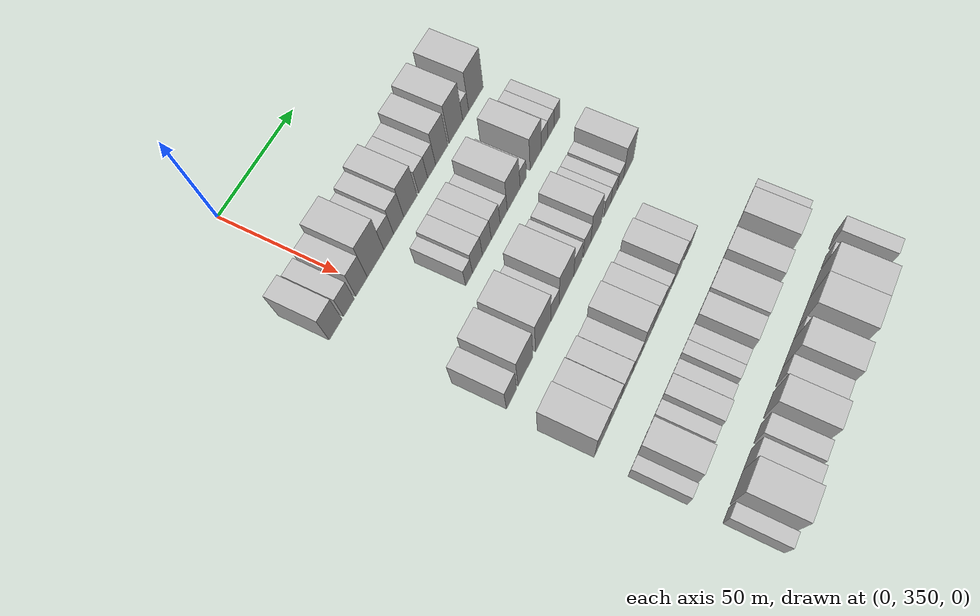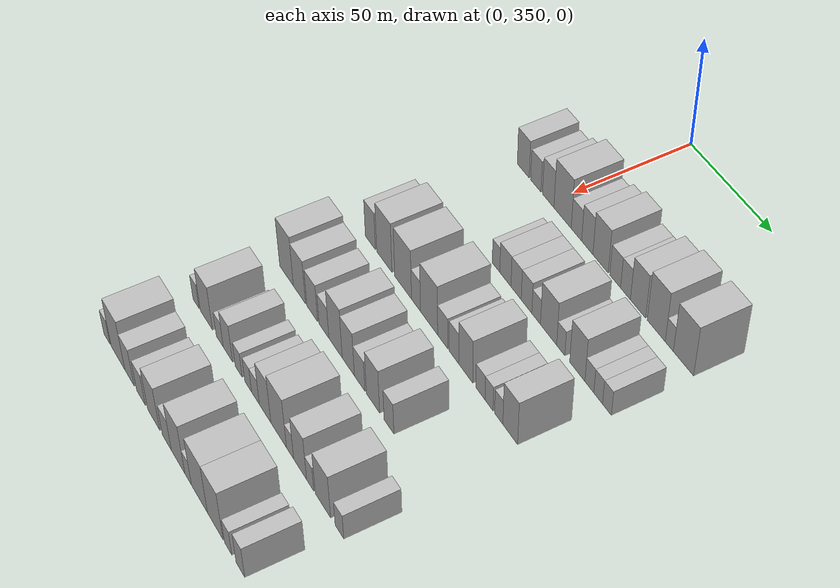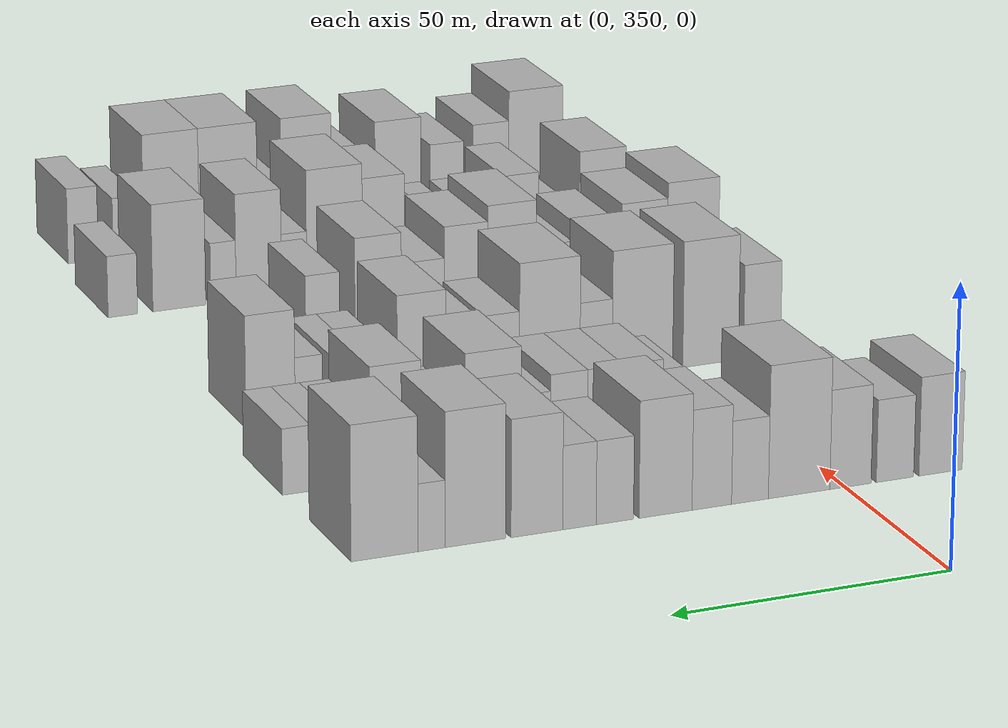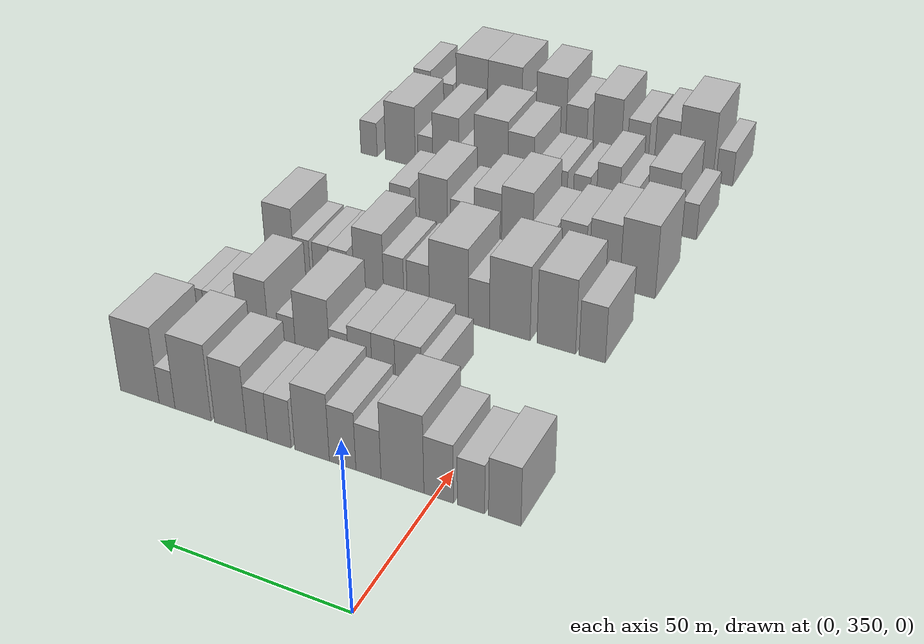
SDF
<sdf version="1.6">
 <world name="default">
  <model name="building_102">
   <static>1</static>
   <pose>50.0000 331.8150 0 0.000000 0.000000 0.000000</pose>
   <link name="link">
    <pose>0 0 9.00 0 0 0</pose>
    <collision name="collision"><geometry><box><size>20.0000 8.2768 18.0000</size></box></geometry></collision>
    <visual name="visual">
     <cast_shadows>0</cast_shadows>
     <geometry><box><size>20.0000 8.2768 18.0000</size></box></geometry>
     <material>
      <script>
       <uri>model://HANNAS_wall/materials/scripts</uri>
       <uri>model://HANNAS_wall/materials/textures</uri>
       <name>vrc/HANNAS_wall</name>
      </script>
     </material>
    </visual>
   </link>
  </model>
  <model name="building_103">
   <static>1</static>
   <pose>50.0000 340.4991 0 0.000000 0.000000 0.000000</pose>
   <link name="link">
    <pose>0 0 7.50 0 0 0</pose>
    <collision name="collision"><geometry><box><size>20.0000 7.0914 15.0000</size></box></geometry></collision>
    <visual name="visual">
     <cast_shadows>0</cast_shadows>
     <geometry><box><size>20.0000 7.0914 15.0000</size></box></geometry>
     <material>
      <script>
       <uri>model://HANNAS_wall/materials/scripts</uri>
       <uri>model://HANNAS_wall/materials/textures</uri>
       <name>vrc/HANNAS_wall</name>
      </script>
     </material>
    </visual>
   </link>
  </model>
  <model name="building_104">
   <static>1</static>
   <pose>50.0000 348.9305 0 0.000000 0.000000 0.000000</pose>
   <link name="link">
    <pose>0 0 9.00 0 0 0</pose>
    <collision name="collision"><geometry><box><size>20.0000 7.7716 18.0000</size></box></geometry></collision>
    <visual name="visual">
     <cast_shadows>0</cast_shadows>
     <geometry><box><size>20.0000 7.7716 18.0000</size></box></geometry>
     <material>
      <script>
       <uri>model://HANNAS_wall/materials/scripts</uri>
       <uri>model://HANNAS_wall/materials/textures</uri>
       <name>vrc/HANNAS_wall</name>
      </script>
     </material>
    </visual>
   </link>
  </model>
  <model name="building_105">
   <static>1</static>
   <pose>50.0000 358.5675 0 0.000000 0.000000 0.000000</pose>
   <link name="link">
    <pose>0 0 12.00 0 0 0</pose>
    <collision name="collision"><geometry><box><size>20.0000 11.5024 24.0000</size></box></geometry></collision>
    <visual name="visual">
     <cast_shadows>0</cast_shadows>
     <geometry><box><size>20.0000 11.5024 24.0000</size></box></geometry>
     <material>
      <script>
       <uri>model://HANNAS_wall/materials/scripts</uri>
       <uri>model://HANNAS_wall/materials/textures</uri>
       <name>vrc/HANNAS_wall</name>
      </script>
     </material>
    </visual>
   </link>
  </model>
  <model name="building_106">
   <static>1</static>
   <pose>50.0000 367.7410 0 0.000000 0.000000 0.000000</pose>
   <link name="link">
    <pose>0 0 7.50 0 0 0</pose>
    <collision name="collision"><geometry><box><size>20.0000 6.8445 15.0000</size></box></geometry></collision>
    <visual name="visual">
     <cast_shadows>0</cast_shadows>
     <geometry><box><size>20.0000 6.8445 15.0000</size></box></geometry>
     <material>
      <script>
       <uri>model://HANNAS_wall/materials/scripts</uri>
       <uri>model://HANNAS_wall/materials/textures</uri>
       <name>vrc/HANNAS_wall</name>
      </script>
     </material>
    </visual>
   </link>
  </model>
  <model name="building_107">
   <static>1</static>
   <pose>50.0000 374.8216 0 0.000000 0.000000 0.000000</pose>
   <link name="link">
    <pose>0 0 9.00 0 0 0</pose>
    <collision name="collision"><geometry><box><size>20.0000 7.3167 18.0000</size></box></geometry></collision>
    <visual name="visual">
     <cast_shadows>0</cast_shadows>
     <geometry><box><size>20.0000 7.3167 18.0000</size></box></geometry>
     <material>
      <script>
       <uri>model://HANNAS_wall/materials/scripts</uri>
       <uri>model://HANNAS_wall/materials/textures</uri>
       <name>vrc/HANNAS_wall</name>
      </script>
     </material>
    </visual>
   </link>
  </model>
  <model name="building_108">
   <static>1</static>
   <pose>50.0000 383.3439 0 0.000000 0.000000 0.000000</pose>
   <link name="link">
    <pose>0 0 10.50 0 0 0</pose>
    <collision name="collision"><geometry><box><size>20.0000 9.7280 21.0000</size></box></geometry></collision>
    <visual name="visual">
     <cast_shadows>0</cast_shadows>
     <geometry><box><size>20.0000 9.7280 21.0000</size></box></geometry>
     <material>
      <script>
       <uri>model://HANNAS_wall/materials/scripts</uri>
       <uri>model://HANNAS_wall/materials/textures</uri>
       <name>vrc/HANNAS_wall</name>
      </script>
     </material>
    </visual>
   </link>
  </model>
  <model name="building_109">
   <static>1</static>
   <pose>50.0000 392.6056 0 0.000000 0.000000 0.000000</pose>
   <link name="link">
    <pose>0 0 7.50 0 0 0</pose>
    <collision name="collision"><geometry><box><size>20.0000 6.7952 15.0000</size></box></geometry></collision>
    <visual name="visual">
     <cast_shadows>0</cast_shadows>
     <geometry><box><size>20.0000 6.7952 15.0000</size></box></geometry>
     <material>
      <script>
       <uri>model://HANNAS_wall/materials/scripts</uri>
       <uri>model://HANNAS_wall/materials/textures</uri>
       <name>vrc/HANNAS_wall</name>
      </script>
     </material>
    </visual>
   </link>
  </model>
  <model name="building_110">
   <static>1</static>
   <pose>50.0000 399.0414 0 0.000000 0.000000 0.000000</pose>
   <link name="link">
    <pose>0 0 7.50 0 0 0</pose>
    <collision name="collision"><geometry><box><size>20.0000 6.0764 15.0000</size></box></geometry></collision>
    <visual name="visual">
     <cast_shadows>0</cast_shadows>
     <geometry><box><size>20.0000 6.0764 15.0000</size></box></geometry>
     <material>
      <script>
       <uri>model://HANNAS_wall/materials/scripts</uri>
       <uri>model://HANNAS_wall/materials/textures</uri>
       <name>vrc/HANNAS_wall</name>
      </script>
     </material>
    </visual>
   </link>
  </model>
  <model name="building_111">
   <static>1</static>
   <pose>50.0000 406.7336 0 0.000000 0.000000 0.000000</pose>
   <link name="link">
    <pose>0 0 10.50 0 0 0</pose>
    <collision name="collision"><geometry><box><size>20.0000 9.3079 21.0000</size></box></geometry></collision>
    <visual name="visual">
     <cast_shadows>0</cast_shadows>
     <geometry><box><size>20.0000 9.3079 21.0000</size></box></geometry>
     <material>
      <script>
       <uri>model://HANNAS_wall/materials/scripts</uri>
       <uri>model://HANNAS_wall/materials/textures</uri>
       <name>vrc/HANNAS_wall</name>
      </script>
     </material>
    </visual>
   </link>
  </model>
  <model name="building_112">
   <static>1</static>
   <pose>50.0000 417.7775 0 0.000000 0.000000 0.000000</pose>
   <link name="link">
    <pose>0 0 12.00 0 0 0</pose>
    <collision name="collision"><geometry><box><size>20.0000 10.7799 24.0000</size></box></geometry></collision>
    <visual name="visual">
     <cast_shadows>0</cast_shadows>
     <geometry><box><size>20.0000 10.7799 24.0000</size></box></geometry>
     <material>
      <script>
       <uri>model://HANNAS_wall/materials/scripts</uri>
       <uri>model://HANNAS_wall/materials/textures</uri>
       <name>vrc/HANNAS_wall</name>
      </script>
     </material>
    </visual>
   </link>
  </model>
  <model name="building_113">
   <static>1</static>
   <pose>50.0000 425.5743 0 0.000000 0.000000 0.000000</pose>
   <link name="link">
    <pose>0 0 6.00 0 0 0</pose>
    <collision name="collision"><geometry><box><size>20.0000 4.8137 12.0000</size></box></geometry></collision>
    <visual name="visual">
     <cast_shadows>0</cast_shadows>
     <geometry><box><size>20.0000 4.8137 12.0000</size></box></geometry>
     <material>
      <script>
       <uri>model://HANNAS_wall/materials/scripts</uri>
       <uri>model://HANNAS_wall/materials/textures</uri>
       <name>vrc/HANNAS_wall</name>
      </script>
     </material>
    </visual>
   </link>
  </model>
  <model name="building_114">
   <static>1</static>
   <pose>50.0000 433.8825 0 0.000000 0.000000 0.000000</pose>
   <link name="link">
    <pose>0 0 12.00 0 0 0</pose>
    <collision name="collision"><geometry><box><size>20.0000 11.8028 24.0000</size></box></geometry></collision>
    <visual name="visual">
     <cast_shadows>0</cast_shadows>
     <geometry><box><size>20.0000 11.8028 24.0000</size></box></geometry>
     <material>
      <script>
       <uri>model://HANNAS_wall/materials/scripts</uri>
       <uri>model://HANNAS_wall/materials/textures</uri>
       <name>vrc/HANNAS_wall</name>
      </script>
     </material>
    </visual>
   </link>
  </model>
  <model name="building_221">
   <static>1</static>
   <pose>82.0000 367.2864 0 0.000000 0.000000 0.000000</pose>
   <link name="link">
    <pose>0 0 6.00 0 0 0</pose>
    <collision name="collision"><geometry><box><size>20.0000 5.0644 12.0000</size></box></geometry></collision>
    <visual name="visual">
     <cast_shadows>0</cast_shadows>
     <geometry><box><size>20.0000 5.0644 12.0000</size></box></geometry>
     <material>
      <script>
       <uri>model://HANNAS_wall/materials/scripts</uri>
       <uri>model://HANNAS_wall/materials/textures</uri>
       <name>vrc/HANNAS_wall</name>
      </script>
     </material>
    </visual>
   </link>
  </model>
  <model name="building_222">
   <static>1</static>
   <pose>82.0000 373.5631 0 0.000000 0.000000 0.000000</pose>
   <link name="link">
    <pose>0 0 7.50 0 0 0</pose>
    <collision name="collision"><geometry><box><size>20.0000 7.4890 15.0000</size></box></geometry></collision>
    <visual name="visual">
     <cast_shadows>0</cast_shadows>
     <geometry><box><size>20.0000 7.4890 15.0000</size></box></geometry>
     <material>
      <script>
       <uri>model://HANNAS_wall/materials/scripts</uri>
       <uri>model://HANNAS_wall/materials/textures</uri>
       <name>vrc/HANNAS_wall</name>
      </script>
     </material>
    </visual>
   </link>
  </model>
  <model name="building_223">
   <static>1</static>
   <pose>82.0000 380.6841 0 0.000000 0.000000 0.000000</pose>
   <link name="link">
    <pose>0 0 7.50 0 0 0</pose>
    <collision name="collision"><geometry><box><size>20.0000 6.7529 15.0000</size></box></geometry></collision>
    <visual name="visual">
     <cast_shadows>0</cast_shadows>
     <geometry><box><size>20.0000 6.7529 15.0000</size></box></geometry>
     <material>
      <script>
       <uri>model://HANNAS_wall/materials/scripts</uri>
       <uri>model://HANNAS_wall/materials/textures</uri>
       <name>vrc/HANNAS_wall</name>
      </script>
     </material>
    </visual>
   </link>
  </model>
  <model name="building_224">
   <static>1</static>
   <pose>82.0000 387.5151 0 0.000000 0.000000 0.000000</pose>
   <link name="link">
    <pose>0 0 7.50 0 0 0</pose>
    <collision name="collision"><geometry><box><size>20.0000 6.9091 15.0000</size></box></geometry></collision>
    <visual name="visual">
     <cast_shadows>0</cast_shadows>
     <geometry><box><size>20.0000 6.9091 15.0000</size></box></geometry>
     <material>
      <script>
       <uri>model://HANNAS_wall/materials/scripts</uri>
       <uri>model://HANNAS_wall/materials/textures</uri>
       <name>vrc/HANNAS_wall</name>
      </script>
     </material>
    </visual>
   </link>
  </model>
  <model name="building_225">
   <static>1</static>
   <pose>82.0000 393.7535 0 0.000000 0.000000 0.000000</pose>
   <link name="link">
    <pose>0 0 6.00 0 0 0</pose>
    <collision name="collision"><geometry><box><size>20.0000 5.5678 12.0000</size></box></geometry></collision>
    <visual name="visual">
     <cast_shadows>0</cast_shadows>
     <geometry><box><size>20.0000 5.5678 12.0000</size></box></geometry>
     <material>
      <script>
       <uri>model://HANNAS_wall/materials/scripts</uri>
       <uri>model://HANNAS_wall/materials/textures</uri>
       <name>vrc/HANNAS_wall</name>
      </script>
     </material>
    </visual>
   </link>
  </model>
  <model name="building_226">
   <static>1</static>
   <pose>82.0000 401.7065 0 0.000000 0.000000 0.000000</pose>
   <link name="link">
    <pose>0 0 10.50 0 0 0</pose>
    <collision name="collision"><geometry><box><size>20.0000 10.3382 21.0000</size></box></geometry></collision>
    <visual name="visual">
     <cast_shadows>0</cast_shadows>
     <geometry><box><size>20.0000 10.3382 21.0000</size></box></geometry>
     <material>
      <script>
       <uri>model://HANNAS_wall/materials/scripts</uri>
       <uri>model://HANNAS_wall/materials/textures</uri>
       <name>vrc/HANNAS_wall</name>
      </script>
     </material>
    </visual>
   </link>
  </model>
  <model name="building_227">
   <static>1</static>
   <pose>82.0000 409.4447 0 0.000000 0.000000 0.000000</pose>
   <link name="link">
    <pose>0 0 6.00 0 0 0</pose>
    <collision name="collision"><geometry><box><size>20.0000 5.1383 12.0000</size></box></geometry></collision>
    <visual name="visual">
     <cast_shadows>0</cast_shadows>
     <geometry><box><size>20.0000 5.1383 12.0000</size></box></geometry>
     <material>
      <script>
       <uri>model://HANNAS_wall/materials/scripts</uri>
       <uri>model://HANNAS_wall/materials/textures</uri>
       <name>vrc/HANNAS_wall</name>
      </script>
     </material>
    </visual>
   </link>
  </model>
  <model name="building_228">
   <static>1</static>
   <pose>82.0000 419.6956 0 0.000000 0.000000 0.000000</pose>
   <link name="link">
    <pose>0 0 10.50 0 0 0</pose>
    <collision name="collision"><geometry><box><size>20.0000 9.3636 21.0000</size></box></geometry></collision>
    <visual name="visual">
     <cast_shadows>0</cast_shadows>
     <geometry><box><size>20.0000 9.3636 21.0000</size></box></geometry>
     <material>
      <script>
       <uri>model://HANNAS_wall/materials/scripts</uri>
       <uri>model://HANNAS_wall/materials/textures</uri>
       <name>vrc/HANNAS_wall</name>
      </script>
     </material>
    </visual>
   </link>
  </model>
  <model name="building_229">
   <static>1</static>
   <pose>82.0000 427.0861 0 0.000000 0.000000 0.000000</pose>
   <link name="link">
    <pose>0 0 6.00 0 0 0</pose>
    <collision name="collision"><geometry><box><size>20.0000 5.4173 12.0000</size></box></geometry></collision>
    <visual name="visual">
     <cast_shadows>0</cast_shadows>
     <geometry><box><size>20.0000 5.4173 12.0000</size></box></geometry>
     <material>
      <script>
       <uri>model://HANNAS_wall/materials/scripts</uri>
       <uri>model://HANNAS_wall/materials/textures</uri>
       <name>vrc/HANNAS_wall</name>
      </script>
     </material>
    </visual>
   </link>
  </model>
  <model name="building_230">
   <static>1</static>
   <pose>82.0000 432.4132 0 0.000000 0.000000 0.000000</pose>
   <link name="link">
    <pose>0 0 6.00 0 0 0</pose>
    <collision name="collision"><geometry><box><size>20.0000 5.2370 12.0000</size></box></geometry></collision>
    <visual name="visual">
     <cast_shadows>0</cast_shadows>
     <geometry><box><size>20.0000 5.2370 12.0000</size></box></geometry>
     <material>
      <script>
       <uri>model://HANNAS_wall/materials/scripts</uri>
       <uri>model://HANNAS_wall/materials/textures</uri>
       <name>vrc/HANNAS_wall</name>
      </script>
     </material>
    </visual>
   </link>
  </model>
  <model name="building_231">
   <static>1</static>
   <pose>82.0000 437.6467 0 0.000000 0.000000 0.000000</pose>
   <link name="link">
    <pose>0 0 6.00 0 0 0</pose>
    <collision name="collision"><geometry><box><size>20.0000 5.2298 12.0000</size></box></geometry></collision>
    <visual name="visual">
     <cast_shadows>0</cast_shadows>
     <geometry><box><size>20.0000 5.2298 12.0000</size></box></geometry>
     <material>
      <script>
       <uri>model://HANNAS_wall/materials/scripts</uri>
       <uri>model://HANNAS_wall/materials/textures</uri>
       <name>vrc/HANNAS_wall</name>
      </script>
     </material>
    </visual>
   </link>
  </model>
  <model name="building_337">
   <static>1</static>
   <pose>114.0000 335.9971 0 0.000000 0.000000 0.000000</pose>
   <link name="link">
    <pose>0 0 9.00 0 0 0</pose>
    <collision name="collision"><geometry><box><size>20.0000 7.4211 18.0000</size></box></geometry></collision>
    <visual name="visual">
     <cast_shadows>0</cast_shadows>
     <geometry><box><size>20.0000 7.4211 18.0000</size></box></geometry>
     <material>
      <script>
       <uri>model://HANNAS_wall/materials/scripts</uri>
       <uri>model://HANNAS_wall/materials/textures</uri>
       <name>vrc/HANNAS_wall</name>
      </script>
     </material>
    </visual>
   </link>
  </model>
  <model name="building_338">
   <static>1</static>
   <pose>114.0000 346.2413 0 0.000000 0.000000 0.000000</pose>
   <link name="link">
    <pose>0 0 12.00 0 0 0</pose>
    <collision name="collision"><geometry><box><size>20.0000 11.0673 24.0000</size></box></geometry></collision>
    <visual name="visual">
     <cast_shadows>0</cast_shadows>
     <geometry><box><size>20.0000 11.0673 24.0000</size></box></geometry>
     <material>
      <script>
       <uri>model://HANNAS_wall/materials/scripts</uri>
       <uri>model://HANNAS_wall/materials/textures</uri>
       <name>vrc/HANNAS_wall</name>
      </script>
     </material>
    </visual>
   </link>
  </model>
  <model name="building_339">
   <static>1</static>
   <pose>114.0000 359.7305 0 0.000000 0.000000 0.000000</pose>
   <link name="link">
    <pose>0 0 12.00 0 0 0</pose>
    <collision name="collision"><geometry><box><size>20.0000 11.9111 24.0000</size></box></geometry></collision>
    <visual name="visual">
     <cast_shadows>0</cast_shadows>
     <geometry><box><size>20.0000 11.9111 24.0000</size></box></geometry>
     <material>
      <script>
       <uri>model://HANNAS_wall/materials/scripts</uri>
       <uri>model://HANNAS_wall/materials/textures</uri>
       <name>vrc/HANNAS_wall</name>
      </script>
     </material>
    </visual>
   </link>
  </model>
  <model name="building_340">
   <static>1</static>
   <pose>114.0000 368.8343 0 0.000000 0.000000 0.000000</pose>
   <link name="link">
    <pose>0 0 7.50 0 0 0</pose>
    <collision name="collision"><geometry><box><size>20.0000 6.2966 15.0000</size></box></geometry></collision>
    <visual name="visual">
     <cast_shadows>0</cast_shadows>
     <geometry><box><size>20.0000 6.2966 15.0000</size></box></geometry>
     <material>
      <script>
       <uri>model://HANNAS_wall/materials/scripts</uri>
       <uri>model://HANNAS_wall/materials/textures</uri>
       <name>vrc/HANNAS_wall</name>
      </script>
     </material>
    </visual>
   </link>
  </model>
  <model name="building_341">
   <static>1</static>
   <pose>114.0000 377.8591 0 0.000000 0.000000 0.000000</pose>
   <link name="link">
    <pose>0 0 12.00 0 0 0</pose>
    <collision name="collision"><geometry><box><size>20.0000 11.7530 24.0000</size></box></geometry></collision>
    <visual name="visual">
     <cast_shadows>0</cast_shadows>
     <geometry><box><size>20.0000 11.7530 24.0000</size></box></geometry>
     <material>
      <script>
       <uri>model://HANNAS_wall/materials/scripts</uri>
       <uri>model://HANNAS_wall/materials/textures</uri>
       <name>vrc/HANNAS_wall</name>
      </script>
     </material>
    </visual>
   </link>
  </model>
  <model name="building_342">
   <static>1</static>
   <pose>114.0000 387.1487 0 0.000000 0.000000 0.000000</pose>
   <link name="link">
    <pose>0 0 7.50 0 0 0</pose>
    <collision name="collision"><geometry><box><size>20.0000 6.8263 15.0000</size></box></geometry></collision>
    <visual name="visual">
     <cast_shadows>0</cast_shadows>
     <geometry><box><size>20.0000 6.8263 15.0000</size></box></geometry>
     <material>
      <script>
       <uri>model://HANNAS_wall/materials/scripts</uri>
       <uri>model://HANNAS_wall/materials/textures</uri>
       <name>vrc/HANNAS_wall</name>
      </script>
     </material>
    </visual>
   </link>
  </model>
  <model name="building_343">
   <static>1</static>
   <pose>114.0000 394.6922 0 0.000000 0.000000 0.000000</pose>
   <link name="link">
    <pose>0 0 7.50 0 0 0</pose>
    <collision name="collision"><geometry><box><size>20.0000 6.2605 15.0000</size></box></geometry></collision>
    <visual name="visual">
     <cast_shadows>0</cast_shadows>
     <geometry><box><size>20.0000 6.2605 15.0000</size></box></geometry>
     <material>
      <script>
       <uri>model://HANNAS_wall/materials/scripts</uri>
       <uri>model://HANNAS_wall/materials/textures</uri>
       <name>vrc/HANNAS_wall</name>
      </script>
     </material>
    </visual>
   </link>
  </model>
  <model name="building_344">
   <static>1</static>
   <pose>114.0000 402.4687 0 0.000000 0.000000 0.000000</pose>
   <link name="link">
    <pose>0 0 10.50 0 0 0</pose>
    <collision name="collision"><geometry><box><size>20.0000 9.2925 21.0000</size></box></geometry></collision>
    <visual name="visual">
     <cast_shadows>0</cast_shadows>
     <geometry><box><size>20.0000 9.2925 21.0000</size></box></geometry>
     <material>
      <script>
       <uri>model://HANNAS_wall/materials/scripts</uri>
       <uri>model://HANNAS_wall/materials/textures</uri>
       <name>vrc/HANNAS_wall</name>
      </script>
     </material>
    </visual>
   </link>
  </model>
  <model name="building_345">
   <static>1</static>
   <pose>114.0000 412.0658 0 0.000000 0.000000 0.000000</pose>
   <link name="link">
    <pose>0 0 6.00 0 0 0</pose>
    <collision name="collision"><geometry><box><size>20.0000 5.9017 12.0000</size></box></geometry></collision>
    <visual name="visual">
     <cast_shadows>0</cast_shadows>
     <geometry><box><size>20.0000 5.9017 12.0000</size></box></geometry>
     <material>
      <script>
       <uri>model://HANNAS_wall/materials/scripts</uri>
       <uri>model://HANNAS_wall/materials/textures</uri>
       <name>vrc/HANNAS_wall</name>
      </script>
     </material>
    </visual>
   </link>
  </model>
  <model name="building_346">
   <static>1</static>
   <pose>114.0000 417.5877 0 0.000000 0.000000 0.000000</pose>
   <link name="link">
    <pose>0 0 6.00 0 0 0</pose>
    <collision name="collision"><geometry><box><size>20.0000 5.1420 12.0000</size></box></geometry></collision>
    <visual name="visual">
     <cast_shadows>0</cast_shadows>
     <geometry><box><size>20.0000 5.1420 12.0000</size></box></geometry>
     <material>
      <script>
       <uri>model://HANNAS_wall/materials/scripts</uri>
       <uri>model://HANNAS_wall/materials/textures</uri>
       <name>vrc/HANNAS_wall</name>
      </script>
     </material>
    </visual>
   </link>
  </model>
  <model name="building_347">
   <static>1</static>
   <pose>114.0000 423.7530 0 0.000000 0.000000 0.000000</pose>
   <link name="link">
    <pose>0 0 6.00 0 0 0</pose>
    <collision name="collision"><geometry><box><size>20.0000 5.1887 12.0000</size></box></geometry></collision>
    <visual name="visual">
     <cast_shadows>0</cast_shadows>
     <geometry><box><size>20.0000 5.1887 12.0000</size></box></geometry>
     <material>
      <script>
       <uri>model://HANNAS_wall/materials/scripts</uri>
       <uri>model://HANNAS_wall/materials/textures</uri>
       <name>vrc/HANNAS_wall</name>
      </script>
     </material>
    </visual>
   </link>
  </model>
  <model name="building_348">
   <static>1</static>
   <pose>114.0000 430.9393 0 0.000000 0.000000 0.000000</pose>
   <link name="link">
    <pose>0 0 10.50 0 0 0</pose>
    <collision name="collision"><geometry><box><size>20.0000 9.1839 21.0000</size></box></geometry></collision>
    <visual name="visual">
     <cast_shadows>0</cast_shadows>
     <geometry><box><size>20.0000 9.1839 21.0000</size></box></geometry>
     <material>
      <script>
       <uri>model://HANNAS_wall/materials/scripts</uri>
       <uri>model://HANNAS_wall/materials/textures</uri>
       <name>vrc/HANNAS_wall</name>
      </script>
     </material>
    </visual>
   </link>
  </model>
  <model name="building_463">
   <static>1</static>
   <pose>146.0000 335.5817 0 0.000000 0.000000 0.000000</pose>
   <link name="link">
    <pose>0 0 12.00 0 0 0</pose>
    <collision name="collision"><geometry><box><size>20.0000 10.5070 24.0000</size></box></geometry></collision>
    <visual name="visual">
     <cast_shadows>0</cast_shadows>
     <geometry><box><size>20.0000 10.5070 24.0000</size></box></geometry>
     <material>
      <script>
       <uri>model://HANNAS_wall/materials/scripts</uri>
       <uri>model://HANNAS_wall/materials/textures</uri>
       <name>vrc/HANNAS_wall</name>
      </script>
     </material>
    </visual>
   </link>
  </model>
  <model name="building_464">
   <static>1</static>
   <pose>146.0000 345.4581 0 0.000000 0.000000 0.000000</pose>
   <link name="link">
    <pose>0 0 10.50 0 0 0</pose>
    <collision name="collision"><geometry><box><size>20.0000 9.2458 21.0000</size></box></geometry></collision>
    <visual name="visual">
     <cast_shadows>0</cast_shadows>
     <geometry><box><size>20.0000 9.2458 21.0000</size></box></geometry>
     <material>
      <script>
       <uri>model://HANNAS_wall/materials/scripts</uri>
       <uri>model://HANNAS_wall/materials/textures</uri>
       <name>vrc/HANNAS_wall</name>
      </script>
     </material>
    </visual>
   </link>
  </model>
  <model name="building_465">
   <static>1</static>
   <pose>146.0000 355.0870 0 0.000000 0.000000 0.000000</pose>
   <link name="link">
    <pose>0 0 9.00 0 0 0</pose>
    <collision name="collision"><geometry><box><size>20.0000 8.0118 18.0000</size></box></geometry></collision>
    <visual name="visual">
     <cast_shadows>0</cast_shadows>
     <geometry><box><size>20.0000 8.0118 18.0000</size></box></geometry>
     <material>
      <script>
       <uri>model://HANNAS_wall/materials/scripts</uri>
       <uri>model://HANNAS_wall/materials/textures</uri>
       <name>vrc/HANNAS_wall</name>
      </script>
     </material>
    </visual>
   </link>
  </model>
  <model name="building_466">
   <static>1</static>
   <pose>146.0000 363.7079 0 0.000000 0.000000 0.000000</pose>
   <link name="link">
    <pose>0 0 7.50 0 0 0</pose>
    <collision name="collision"><geometry><box><size>20.0000 7.2300 15.0000</size></box></geometry></collision>
    <visual name="visual">
     <cast_shadows>0</cast_shadows>
     <geometry><box><size>20.0000 7.2300 15.0000</size></box></geometry>
     <material>
      <script>
       <uri>model://HANNAS_wall/materials/scripts</uri>
       <uri>model://HANNAS_wall/materials/textures</uri>
       <name>vrc/HANNAS_wall</name>
      </script>
     </material>
    </visual>
   </link>
  </model>
  <model name="building_467">
   <static>1</static>
   <pose>146.0000 372.1529 0 0.000000 0.000000 0.000000</pose>
   <link name="link">
    <pose>0 0 12.00 0 0 0</pose>
    <collision name="collision"><geometry><box><size>20.0000 9.6600 24.0000</size></box></geometry></collision>
    <visual name="visual">
     <cast_shadows>0</cast_shadows>
     <geometry><box><size>20.0000 9.6600 24.0000</size></box></geometry>
     <material>
      <script>
       <uri>model://HANNAS_wall/materials/scripts</uri>
       <uri>model://HANNAS_wall/materials/textures</uri>
       <name>vrc/HANNAS_wall</name>
      </script>
     </material>
    </visual>
   </link>
  </model>
  <model name="building_468">
   <static>1</static>
   <pose>146.0000 381.2949 0 0.000000 0.000000 0.000000</pose>
   <link name="link">
    <pose>0 0 10.50 0 0 0</pose>
    <collision name="collision"><geometry><box><size>20.0000 8.6240 21.0000</size></box></geometry></collision>
    <visual name="visual">
     <cast_shadows>0</cast_shadows>
     <geometry><box><size>20.0000 8.6240 21.0000</size></box></geometry>
     <material>
      <script>
       <uri>model://HANNAS_wall/materials/scripts</uri>
       <uri>model://HANNAS_wall/materials/textures</uri>
       <name>vrc/HANNAS_wall</name>
      </script>
     </material>
    </visual>
   </link>
  </model>
  <model name="building_469">
   <static>1</static>
   <pose>146.0000 389.3168 0 0.000000 0.000000 0.000000</pose>
   <link name="link">
    <pose>0 0 7.50 0 0 0</pose>
    <collision name="collision"><geometry><box><size>20.0000 7.4198 15.0000</size></box></geometry></collision>
    <visual name="visual">
     <cast_shadows>0</cast_shadows>
     <geometry><box><size>20.0000 7.4198 15.0000</size></box></geometry>
     <material>
      <script>
       <uri>model://HANNAS_wall/materials/scripts</uri>
       <uri>model://HANNAS_wall/materials/textures</uri>
       <name>vrc/HANNAS_wall</name>
      </script>
     </material>
    </visual>
   </link>
  </model>
  <model name="building_470">
   <static>1</static>
   <pose>146.0000 398.5704 0 0.000000 0.000000 0.000000</pose>
   <link name="link">
    <pose>0 0 10.50 0 0 0</pose>
    <collision name="collision"><geometry><box><size>20.0000 9.0875 21.0000</size></box></geometry></collision>
    <visual name="visual">
     <cast_shadows>0</cast_shadows>
     <geometry><box><size>20.0000 9.0875 21.0000</size></box></geometry>
     <material>
      <script>
       <uri>model://HANNAS_wall/materials/scripts</uri>
       <uri>model://HANNAS_wall/materials/textures</uri>
       <name>vrc/HANNAS_wall</name>
      </script>
     </material>
    </visual>
   </link>
  </model>
  <model name="building_471">
   <static>1</static>
   <pose>146.0000 409.4148 0 0.000000 0.000000 0.000000</pose>
   <link name="link">
    <pose>0 0 7.50 0 0 0</pose>
    <collision name="collision"><geometry><box><size>20.0000 6.6013 15.0000</size></box></geometry></collision>
    <visual name="visual">
     <cast_shadows>0</cast_shadows>
     <geometry><box><size>20.0000 6.6013 15.0000</size></box></geometry>
     <material>
      <script>
       <uri>model://HANNAS_wall/materials/scripts</uri>
       <uri>model://HANNAS_wall/materials/textures</uri>
       <name>vrc/HANNAS_wall</name>
      </script>
     </material>
    </visual>
   </link>
  </model>
  <model name="building_578">
   <static>1</static>
   <pose>178.0000 331.9635 0 0.000000 0.000000 0.000000</pose>
   <link name="link">
    <pose>0 0 6.00 0 0 0</pose>
    <collision name="collision"><geometry><box><size>20.0000 4.9733 12.0000</size></box></geometry></collision>
    <visual name="visual">
     <cast_shadows>0</cast_shadows>
     <geometry><box><size>20.0000 4.9733 12.0000</size></box></geometry>
     <material>
      <script>
       <uri>model://HANNAS_wall/materials/scripts</uri>
       <uri>model://HANNAS_wall/materials/textures</uri>
       <name>vrc/HANNAS_wall</name>
      </script>
     </material>
    </visual>
   </link>
  </model>
  <model name="building_579">
   <static>1</static>
   <pose>178.0000 340.3024 0 0.000000 0.000000 0.000000</pose>
   <link name="link">
    <pose>0 0 10.50 0 0 0</pose>
    <collision name="collision"><geometry><box><size>20.0000 9.7045 21.0000</size></box></geometry></collision>
    <visual name="visual">
     <cast_shadows>0</cast_shadows>
     <geometry><box><size>20.0000 9.7045 21.0000</size></box></geometry>
     <material>
      <script>
       <uri>model://HANNAS_wall/materials/scripts</uri>
       <uri>model://HANNAS_wall/materials/textures</uri>
       <name>vrc/HANNAS_wall</name>
      </script>
     </material>
    </visual>
   </link>
  </model>
  <model name="building_580">
   <static>1</static>
   <pose>178.0000 350.9095 0 0.000000 0.000000 0.000000</pose>
   <link name="link">
    <pose>0 0 6.00 0 0 0</pose>
    <collision name="collision"><geometry><box><size>20.0000 5.5097 12.0000</size></box></geometry></collision>
    <visual name="visual">
     <cast_shadows>0</cast_shadows>
     <geometry><box><size>20.0000 5.5097 12.0000</size></box></geometry>
     <material>
      <script>
       <uri>model://HANNAS_wall/materials/scripts</uri>
       <uri>model://HANNAS_wall/materials/textures</uri>
       <name>vrc/HANNAS_wall</name>
      </script>
     </material>
    </visual>
   </link>
  </model>
  <model name="building_581">
   <static>1</static>
   <pose>178.0000 357.2757 0 0.000000 0.000000 0.000000</pose>
   <link name="link">
    <pose>0 0 9.00 0 0 0</pose>
    <collision name="collision"><geometry><box><size>20.0000 7.2226 18.0000</size></box></geometry></collision>
    <visual name="visual">
     <cast_shadows>0</cast_shadows>
     <geometry><box><size>20.0000 7.2226 18.0000</size></box></geometry>
     <material>
      <script>
       <uri>model://HANNAS_wall/materials/scripts</uri>
       <uri>model://HANNAS_wall/materials/textures</uri>
       <name>vrc/HANNAS_wall</name>
      </script>
     </material>
    </visual>
   </link>
  </model>
  <model name="building_582">
   <static>1</static>
   <pose>178.0000 365.5545 0 0.000000 0.000000 0.000000</pose>
   <link name="link">
    <pose>0 0 6.00 0 0 0</pose>
    <collision name="collision"><geometry><box><size>20.0000 5.3351 12.0000</size></box></geometry></collision>
    <visual name="visual">
     <cast_shadows>0</cast_shadows>
     <geometry><box><size>20.0000 5.3351 12.0000</size></box></geometry>
     <material>
      <script>
       <uri>model://HANNAS_wall/materials/scripts</uri>
       <uri>model://HANNAS_wall/materials/textures</uri>
       <name>vrc/HANNAS_wall</name>
      </script>
     </material>
    </visual>
   </link>
  </model>
  <model name="building_583">
   <static>1</static>
   <pose>178.0000 372.7694 0 0.000000 0.000000 0.000000</pose>
   <link name="link">
    <pose>0 0 6.00 0 0 0</pose>
    <collision name="collision"><geometry><box><size>20.0000 5.0947 12.0000</size></box></geometry></collision>
    <visual name="visual">
     <cast_shadows>0</cast_shadows>
     <geometry><box><size>20.0000 5.0947 12.0000</size></box></geometry>
     <material>
      <script>
       <uri>model://HANNAS_wall/materials/scripts</uri>
       <uri>model://HANNAS_wall/materials/textures</uri>
       <name>vrc/HANNAS_wall</name>
      </script>
     </material>
    </visual>
   </link>
  </model>
  <model name="building_584">
   <static>1</static>
   <pose>178.0000 378.2252 0 0.000000 0.000000 0.000000</pose>
   <link name="link">
    <pose>0 0 6.00 0 0 0</pose>
    <collision name="collision"><geometry><box><size>20.0000 5.8169 12.0000</size></box></geometry></collision>
    <visual name="visual">
     <cast_shadows>0</cast_shadows>
     <geometry><box><size>20.0000 5.8169 12.0000</size></box></geometry>
     <material>
      <script>
       <uri>model://HANNAS_wall/materials/scripts</uri>
       <uri>model://HANNAS_wall/materials/textures</uri>
       <name>vrc/HANNAS_wall</name>
      </script>
     </material>
    </visual>
   </link>
  </model>
  <model name="building_585">
   <static>1</static>
   <pose>178.0000 385.3915 0 0.000000 0.000000 0.000000</pose>
   <link name="link">
    <pose>0 0 10.50 0 0 0</pose>
    <collision name="collision"><geometry><box><size>20.0000 8.5157 21.0000</size></box></geometry></collision>
    <visual name="visual">
     <cast_shadows>0</cast_shadows>
     <geometry><box><size>20.0000 8.5157 21.0000</size></box></geometry>
     <material>
      <script>
       <uri>model://HANNAS_wall/materials/scripts</uri>
       <uri>model://HANNAS_wall/materials/textures</uri>
       <name>vrc/HANNAS_wall</name>
      </script>
     </material>
    </visual>
   </link>
  </model>
  <model name="building_586">
   <static>1</static>
   <pose>178.0000 395.2652 0 0.000000 0.000000 0.000000</pose>
   <link name="link">
    <pose>0 0 12.00 0 0 0</pose>
    <collision name="collision"><geometry><box><size>20.0000 11.2317 24.0000</size></box></geometry></collision>
    <visual name="visual">
     <cast_shadows>0</cast_shadows>
     <geometry><box><size>20.0000 11.2317 24.0000</size></box></geometry>
     <material>
      <script>
       <uri>model://HANNAS_wall/materials/scripts</uri>
       <uri>model://HANNAS_wall/materials/textures</uri>
       <name>vrc/HANNAS_wall</name>
      </script>
     </material>
    </visual>
   </link>
  </model>
  <model name="building_587">
   <static>1</static>
   <pose>178.0000 403.4077 0 0.000000 0.000000 0.000000</pose>
   <link name="link">
    <pose>0 0 6.00 0 0 0</pose>
    <collision name="collision"><geometry><box><size>20.0000 5.0532 12.0000</size></box></geometry></collision>
    <visual name="visual">
     <cast_shadows>0</cast_shadows>
     <geometry><box><size>20.0000 5.0532 12.0000</size></box></geometry>
     <material>
      <script>
       <uri>model://HANNAS_wall/materials/scripts</uri>
       <uri>model://HANNAS_wall/materials/textures</uri>
       <name>vrc/HANNAS_wall</name>
      </script>
     </material>
    </visual>
   </link>
  </model>
  <model name="building_588">
   <static>1</static>
   <pose>178.0000 410.4640 0 0.000000 0.000000 0.000000</pose>
   <link name="link">
    <pose>0 0 10.50 0 0 0</pose>
    <collision name="collision"><geometry><box><size>20.0000 9.0594 21.0000</size></box></geometry></collision>
    <visual name="visual">
     <cast_shadows>0</cast_shadows>
     <geometry><box><size>20.0000 9.0594 21.0000</size></box></geometry>
     <material>
      <script>
       <uri>model://HANNAS_wall/materials/scripts</uri>
       <uri>model://HANNAS_wall/materials/textures</uri>
       <name>vrc/HANNAS_wall</name>
      </script>
     </material>
    </visual>
   </link>
  </model>
  <model name="building_589">
   <static>1</static>
   <pose>178.0000 417.5110 0 0.000000 0.000000 0.000000</pose>
   <link name="link">
    <pose>0 0 6.00 0 0 0</pose>
    <collision name="collision"><geometry><box><size>20.0000 5.0346 12.0000</size></box></geometry></collision>
    <visual name="visual">
     <cast_shadows>0</cast_shadows>
     <geometry><box><size>20.0000 5.0346 12.0000</size></box></geometry>
     <material>
      <script>
       <uri>model://HANNAS_wall/materials/scripts</uri>
       <uri>model://HANNAS_wall/materials/textures</uri>
       <name>vrc/HANNAS_wall</name>
      </script>
     </material>
    </visual>
   </link>
  </model>
  <model name="building_590">
   <static>1</static>
   <pose>178.0000 426.2384 0 0.000000 0.000000 0.000000</pose>
   <link name="link">
    <pose>0 0 10.50 0 0 0</pose>
    <collision name="collision"><geometry><box><size>20.0000 10.4202 21.0000</size></box></geometry></collision>
    <visual name="visual">
     <cast_shadows>0</cast_shadows>
     <geometry><box><size>20.0000 10.4202 21.0000</size></box></geometry>
     <material>
      <script>
       <uri>model://HANNAS_wall/materials/scripts</uri>
       <uri>model://HANNAS_wall/materials/textures</uri>
       <name>vrc/HANNAS_wall</name>
      </script>
     </material>
    </visual>
   </link>
  </model>
  <model name="building_591">
   <static>1</static>
   <pose>178.0000 437.3365 0 0.000000 0.000000 0.000000</pose>
   <link name="link">
    <pose>0 0 6.00 0 0 0</pose>
    <collision name="collision"><geometry><box><size>20.0000 5.7759 12.0000</size></box></geometry></collision>
    <visual name="visual">
     <cast_shadows>0</cast_shadows>
     <geometry><box><size>20.0000 5.7759 12.0000</size></box></geometry>
     <material>
      <script>
       <uri>model://HANNAS_wall/materials/scripts</uri>
       <uri>model://HANNAS_wall/materials/textures</uri>
       <name>vrc/HANNAS_wall</name>
      </script>
     </material>
    </visual>
   </link>
  </model>
  <model name="building_694">
   <static>1</static>
   <pose>210.0000 331.6218 0 0.000000 0.000000 0.000000</pose>
   <link name="link">
    <pose>0 0 6.00 0 0 0</pose>
    <collision name="collision"><geometry><box><size>20.0000 5.3327 12.0000</size></box></geometry></collision>
    <visual name="visual">
     <cast_shadows>0</cast_shadows>
     <geometry><box><size>20.0000 5.3327 12.0000</size></box></geometry>
     <material>
      <script>
       <uri>model://HANNAS_wall/materials/scripts</uri>
       <uri>model://HANNAS_wall/materials/textures</uri>
       <name>vrc/HANNAS_wall</name>
      </script>
     </material>
    </visual>
   </link>
  </model>
  <model name="building_695">
   <static>1</static>
   <pose>210.0000 341.0329 0 0.000000 0.000000 0.000000</pose>
   <link name="link">
    <pose>0 0 12.00 0 0 0</pose>
    <collision name="collision"><geometry><box><size>20.0000 11.4893 24.0000</size></box></geometry></collision>
    <visual name="visual">
     <cast_shadows>0</cast_shadows>
     <geometry><box><size>20.0000 11.4893 24.0000</size></box></geometry>
     <material>
      <script>
       <uri>model://HANNAS_wall/materials/scripts</uri>
       <uri>model://HANNAS_wall/materials/textures</uri>
       <name>vrc/HANNAS_wall</name>
      </script>
     </material>
    </visual>
   </link>
  </model>
  <model name="building_696">
   <static>1</static>
   <pose>210.0000 350.5809 0 0.000000 0.000000 0.000000</pose>
   <link name="link">
    <pose>0 0 9.00 0 0 0</pose>
    <collision name="collision"><geometry><box><size>20.0000 7.6067 18.0000</size></box></geometry></collision>
    <visual name="visual">
     <cast_shadows>0</cast_shadows>
     <geometry><box><size>20.0000 7.6067 18.0000</size></box></geometry>
     <material>
      <script>
       <uri>model://HANNAS_wall/materials/scripts</uri>
       <uri>model://HANNAS_wall/materials/textures</uri>
       <name>vrc/HANNAS_wall</name>
      </script>
     </material>
    </visual>
   </link>
  </model>
  <model name="building_697">
   <static>1</static>
   <pose>210.0000 359.8956 0 0.000000 0.000000 0.000000</pose>
   <link name="link">
    <pose>0 0 7.50 0 0 0</pose>
    <collision name="collision"><geometry><box><size>20.0000 7.0227 15.0000</size></box></geometry></collision>
    <visual name="visual">
     <cast_shadows>0</cast_shadows>
     <geometry><box><size>20.0000 7.0227 15.0000</size></box></geometry>
     <material>
      <script>
       <uri>model://HANNAS_wall/materials/scripts</uri>
       <uri>model://HANNAS_wall/materials/textures</uri>
       <name>vrc/HANNAS_wall</name>
      </script>
     </material>
    </visual>
   </link>
  </model>
  <model name="building_698">
   <static>1</static>
   <pose>210.0000 370.1926 0 0.000000 0.000000 0.000000</pose>
   <link name="link">
    <pose>0 0 10.50 0 0 0</pose>
    <collision name="collision"><geometry><box><size>20.0000 9.5714 21.0000</size></box></geometry></collision>
    <visual name="visual">
     <cast_shadows>0</cast_shadows>
     <geometry><box><size>20.0000 9.5714 21.0000</size></box></geometry>
     <material>
      <script>
       <uri>model://HANNAS_wall/materials/scripts</uri>
       <uri>model://HANNAS_wall/materials/textures</uri>
       <name>vrc/HANNAS_wall</name>
      </script>
     </material>
    </visual>
   </link>
  </model>
  <model name="building_699">
   <static>1</static>
   <pose>210.0000 380.5325 0 0.000000 0.000000 0.000000</pose>
   <link name="link">
    <pose>0 0 7.50 0 0 0</pose>
    <collision name="collision"><geometry><box><size>20.0000 7.1084 15.0000</size></box></geometry></collision>
    <visual name="visual">
     <cast_shadows>0</cast_shadows>
     <geometry><box><size>20.0000 7.1084 15.0000</size></box></geometry>
     <material>
      <script>
       <uri>model://HANNAS_wall/materials/scripts</uri>
       <uri>model://HANNAS_wall/materials/textures</uri>
       <name>vrc/HANNAS_wall</name>
      </script>
     </material>
    </visual>
   </link>
  </model>
  <model name="building_700">
   <static>1</static>
   <pose>210.0000 389.2592 0 0.000000 0.000000 0.000000</pose>
   <link name="link">
    <pose>0 0 12.00 0 0 0</pose>
    <collision name="collision"><geometry><box><size>20.0000 10.3449 24.0000</size></box></geometry></collision>
    <visual name="visual">
     <cast_shadows>0</cast_shadows>
     <geometry><box><size>20.0000 10.3449 24.0000</size></box></geometry>
     <material>
      <script>
       <uri>model://HANNAS_wall/materials/scripts</uri>
       <uri>model://HANNAS_wall/materials/textures</uri>
       <name>vrc/HANNAS_wall</name>
      </script>
     </material>
    </visual>
   </link>
  </model>
  <model name="building_701">
   <static>1</static>
   <pose>210.0000 396.9084 0 0.000000 0.000000 0.000000</pose>
   <link name="link">
    <pose>0 0 6.00 0 0 0</pose>
    <collision name="collision"><geometry><box><size>20.0000 4.9535 12.0000</size></box></geometry></collision>
    <visual name="visual">
     <cast_shadows>0</cast_shadows>
     <geometry><box><size>20.0000 4.9535 12.0000</size></box></geometry>
     <material>
      <script>
       <uri>model://HANNAS_wall/materials/scripts</uri>
       <uri>model://HANNAS_wall/materials/textures</uri>
       <name>vrc/HANNAS_wall</name>
      </script>
     </material>
    </visual>
   </link>
  </model>
  <model name="building_702">
   <static>1</static>
   <pose>210.0000 405.3479 0 0.000000 0.000000 0.000000</pose>
   <link name="link">
    <pose>0 0 12.00 0 0 0</pose>
    <collision name="collision"><geometry><box><size>20.0000 11.9255 24.0000</size></box></geometry></collision>
    <visual name="visual">
     <cast_shadows>0</cast_shadows>
     <geometry><box><size>20.0000 11.9255 24.0000</size></box></geometry>
     <material>
      <script>
       <uri>model://HANNAS_wall/materials/scripts</uri>
       <uri>model://HANNAS_wall/materials/textures</uri>
       <name>vrc/HANNAS_wall</name>
      </script>
     </material>
    </visual>
   </link>
  </model>
  <model name="building_703">
   <static>1</static>
   <pose>210.0000 416.9573 0 0.000000 0.000000 0.000000</pose>
   <link name="link">
    <pose>0 0 12.00 0 0 0</pose>
    <collision name="collision"><geometry><box><size>20.0000 11.2933 24.0000</size></box></geometry></collision>
    <visual name="visual">
     <cast_shadows>0</cast_shadows>
     <geometry><box><size>20.0000 11.2933 24.0000</size></box></geometry>
     <material>
      <script>
       <uri>model://HANNAS_wall/materials/scripts</uri>
       <uri>model://HANNAS_wall/materials/textures</uri>
       <name>vrc/HANNAS_wall</name>
      </script>
     </material>
    </visual>
   </link>
  </model>
  <model name="building_704">
   <static>1</static>
   <pose>210.0000 426.2099 0 0.000000 0.000000 0.000000</pose>
   <link name="link">
    <pose>0 0 6.00 0 0 0</pose>
    <collision name="collision"><geometry><box><size>20.0000 5.2120 12.0000</size></box></geometry></collision>
    <visual name="visual">
     <cast_shadows>0</cast_shadows>
     <geometry><box><size>20.0000 5.2120 12.0000</size></box></geometry>
     <material>
      <script>
       <uri>model://HANNAS_wall/materials/scripts</uri>
       <uri>model://HANNAS_wall/materials/textures</uri>
       <name>vrc/HANNAS_wall</name>
      </script>
     </material>
    </visual>
   </link>
  </model>
  <model name="building_705">
   <static>1</static>
   <pose>210.0000 434.8579 0 0.000000 0.000000 0.000000</pose>
   <link name="link">
    <pose>0 0 7.50 0 0 0</pose>
    <collision name="collision"><geometry><box><size>20.0000 6.0839 15.0000</size></box></geometry></collision>
    <visual name="visual">
     <cast_shadows>0</cast_shadows>
     <geometry><box><size>20.0000 6.0839 15.0000</size></box></geometry>
     <material>
      <script>
       <uri>model://HANNAS_wall/materials/scripts</uri>
       <uri>model://HANNAS_wall/materials/textures</uri>
       <name>vrc/HANNAS_wall</name>
      </script>
     </material>
    </visual>
   </link>
  </model>
 </world>
</sdf>
